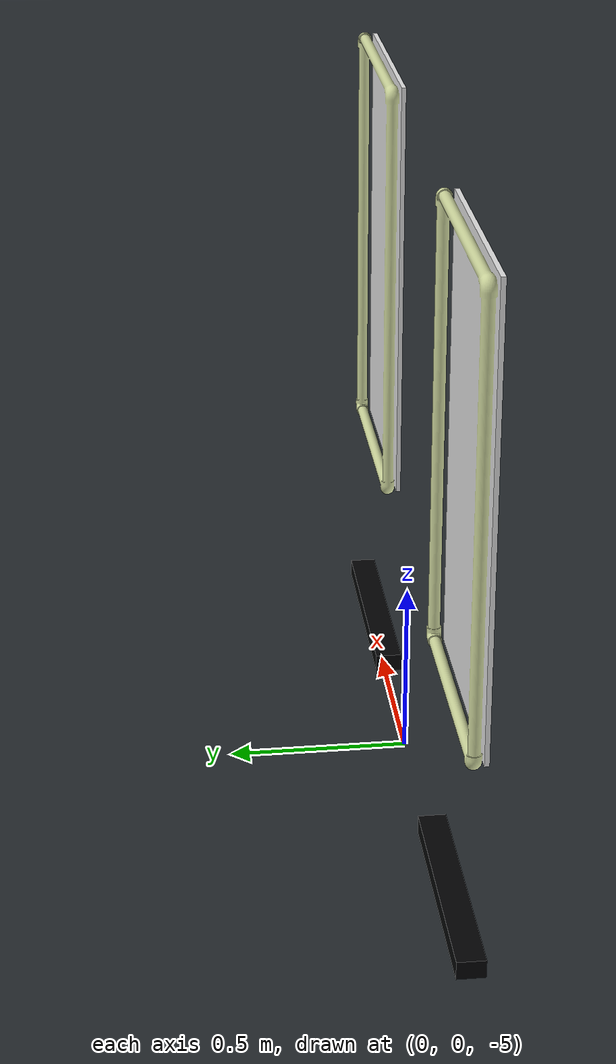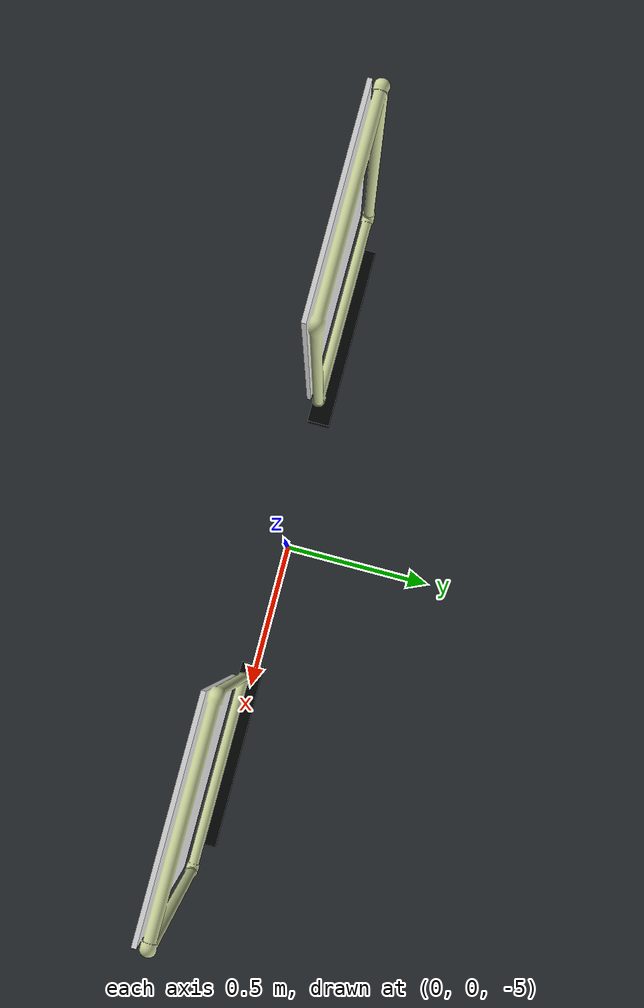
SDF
<?xml version="1.0" ?>
<sdf version="1.9">
    <world name="task_buoys">
        <light type="directional" name="sun">
            <cast_shadows>true</cast_shadows>
            <pose>0 0 10 0 0 0</pose>
            <diffuse>0.8 0.8 0.8 1</diffuse>
            <specular>0.2 0.2 0.2 1</specular>
            <attenuation>
                <range>1000</range>
                <constant>0.9</constant>
                <linear>0.01</linear>
                <quadratic>0.001</quadratic>
            </attenuation>
            <direction>-0.5 0.1 -0.9</direction>
        </light>

        <model name="simple_pool">
            <static>true</static>
            <link name="link">
                <visual name="pool_visual">
                    <geometry>
                        <mesh>
                            <uri>../../../assets/common/simple_pool/simple_pool.dae</uri>
                        </mesh>
                    </geometry>
                </visual>
                <collision name="pool_collision">
                    <geometry>
                        <mesh>
                            <uri>../../../assets/common/simple_pool/simple_pool.dae</uri>
                        </mesh>
                    </geometry>
                </collision>
            </link>
        </model>

        <model name="buoy_bootlegger">
            <static>false</static>
            <link name="buoy_bootlegger">
                <pose> -0.75 0 -5 0 0 -1.5708</pose>
                <visual name="buoy_bootlegger_visual">
                    <geometry>
                        <mesh>
                            <uri>../../../assets/robosub2022/buoys/buoy_bootlegger.dae</uri>
                        </mesh>
                    </geometry>
                </visual>
                <collision name="buoy_bootlegger_collision">
                    <geometry>
                        <mesh>
                            <uri>../../../assets/robosub2022/buoys/buoy_bootlegger.dae</uri>
                        </mesh>
                    </geometry>
                </collision>
            </link>
        </model>

        <model name="ballast_bootlegger">
            <static>true</static>
            <link name="buoy_bootlegger">
                <pose> -0.75 0 -5 0 0 -1.5708</pose>
                <visual name="ballast_bootlegger_visual">
                    <geometry>
                        <mesh>
                            <uri>../../../assets/robosub2022/buoys/ballast.dae</uri>
                        </mesh>
                    </geometry>
                </visual>
                <collision name="ballast_bootlegger_collision">
                    <geometry>
                        <mesh>
                            <uri>../../../assets/robosub2022/buoys/ballast.dae</uri>
                        </mesh>
                    </geometry>
                </collision>
            </link>
        </model>

        <model name="buoy_gman">
            <static>false</static>
            <link name="buoy_gman">
                <pose>0.75 0 -5 0 0 -1.5708</pose>
                <visual name="buoy_gman_visual">
                    <geometry>
                        <mesh>
                            <uri>../../../assets/robosub2022/buoys/buoy_gman.dae</uri>
                        </mesh>
                    </geometry>
                </visual>
                <collision name="buoy_gman_collision">
                    <geometry>
                        <mesh>
                            <uri>../../../assets/robosub2022/buoys/buoy_gman.dae</uri>
                        </mesh>
                    </geometry>
                </collision>
            </link>
        </model>

        <model name="ballast_gman">
            <static>true</static>
            <link name="ballast_gman">
                <pose>0.75 0 -5 0 0 -1.5708</pose>
                <visual name="ballast_gman_visual">
                    <geometry>
                        <mesh>
                            <uri>../../../assets/robosub2022/buoys/ballast.dae</uri>
                        </mesh>
                    </geometry>
                </visual>
                <collision name="ballast_gman_collision">
                    <geometry>
                        <mesh>
                            <uri>../../../assets/robosub2022/buoys/ballast.dae</uri>
                        </mesh>
                    </geometry>
                </collision>
            </link>
        </model>
    </world>
</sdf>
